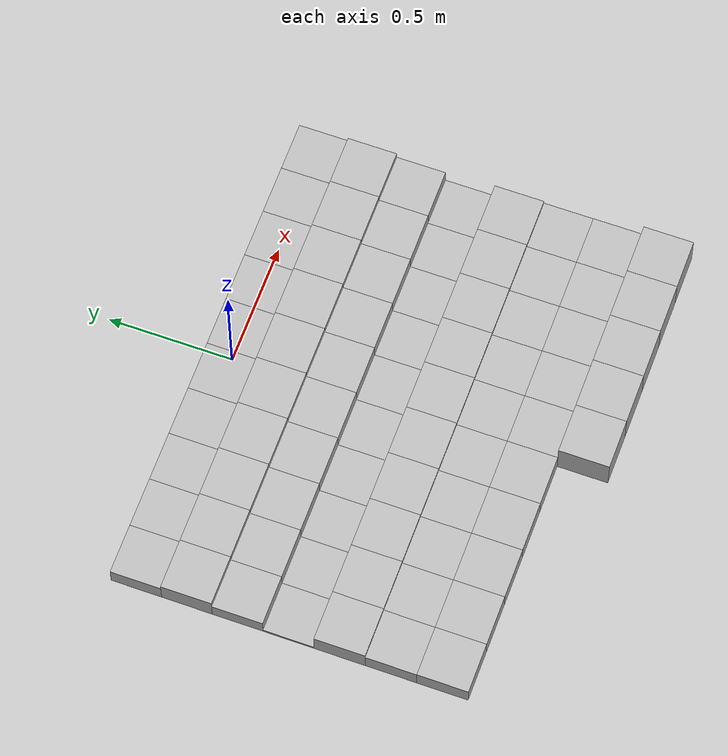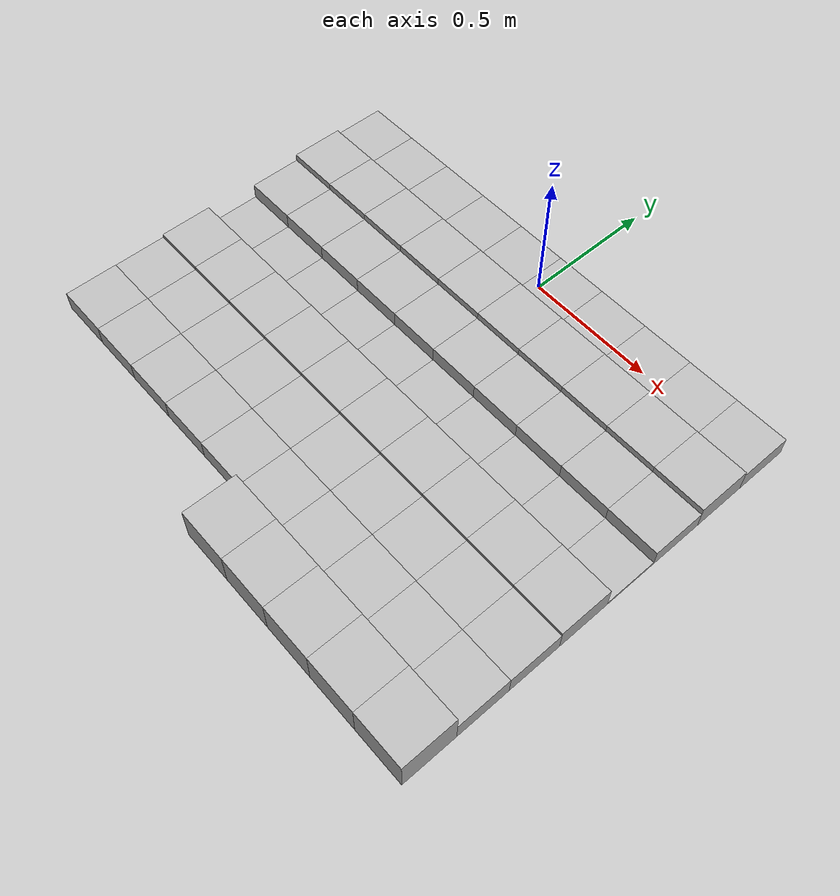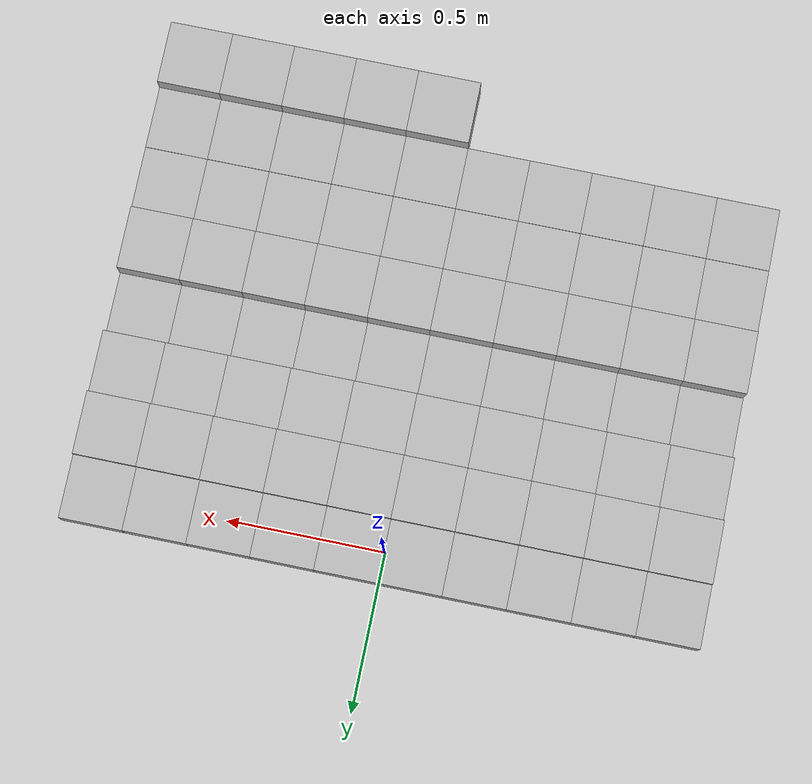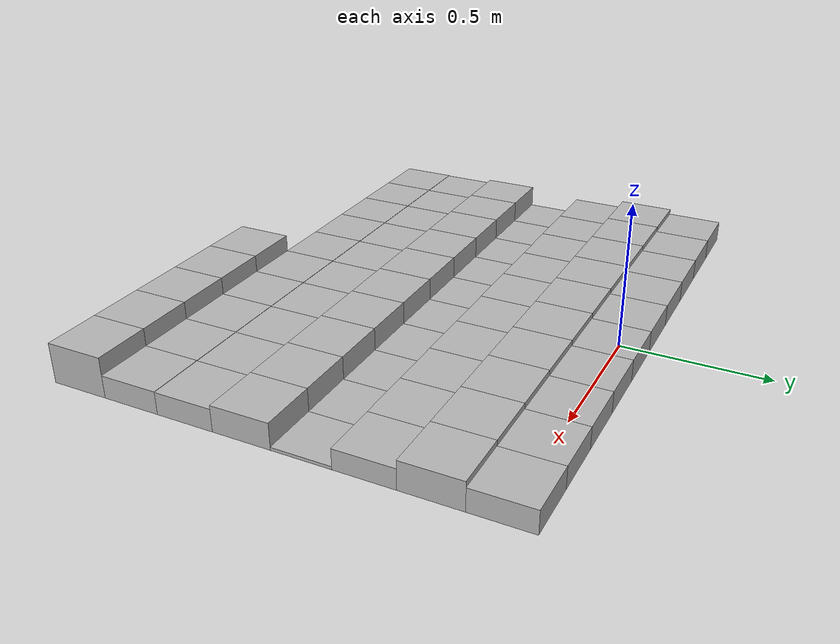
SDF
<sdf version="1.6">
 <model name="Terrain">
  <static>true</static>
  <link name="box_0_0">
   <pose>-0.9 0.0 0.0390463751198 0 0 0</pose>
   <inertial>
    <mass>1.0</mass>
    <inertia><ixx>0.0</ixx><ixy>0.0</ixy><ixz>0.0</ixz><iyy>0.0</iyy><iyz>0.0</iyz><izz>0.0</izz></inertia>
   </inertial>
   <collision name="collision"><geometry><box><size>0.2 0.2 0.0780927502396</size></box></geometry></collision>
   <visual name="visual"><geometry><box><size>0.2 0.2 0.0780927502396</size></box></geometry></visual>
  </link>
  <link name="box_0_1">
   <pose>-0.7 0.0 0.0390463751198 0 0 0</pose>
   <inertial>
    <mass>1.0</mass>
    <inertia><ixx>0.0</ixx><ixy>0.0</ixy><ixz>0.0</ixz><iyy>0.0</iyy><iyz>0.0</iyz><izz>0.0</izz></inertia>
   </inertial>
   <collision name="collision"><geometry><box><size>0.2 0.2 0.0780927502396</size></box></geometry></collision>
   <visual name="visual"><geometry><box><size>0.2 0.2 0.0780927502396</size></box></geometry></visual>
  </link>
  <link name="box_0_2">
   <pose>-0.5 0.0 0.0390463751198 0 0 0</pose>
   <inertial>
    <mass>1.0</mass>
    <inertia><ixx>0.0</ixx><ixy>0.0</ixy><ixz>0.0</ixz><iyy>0.0</iyy><iyz>0.0</iyz><izz>0.0</izz></inertia>
   </inertial>
   <collision name="collision"><geometry><box><size>0.2 0.2 0.0780927502396</size></box></geometry></collision>
   <visual name="visual"><geometry><box><size>0.2 0.2 0.0780927502396</size></box></geometry></visual>
  </link>
  <link name="box_0_3">
   <pose>-0.3 0.0 0.0390463751198 0 0 0</pose>
   <inertial>
    <mass>1.0</mass>
    <inertia><ixx>0.0</ixx><ixy>0.0</ixy><ixz>0.0</ixz><iyy>0.0</iyy><iyz>0.0</iyz><izz>0.0</izz></inertia>
   </inertial>
   <collision name="collision"><geometry><box><size>0.2 0.2 0.0780927502396</size></box></geometry></collision>
   <visual name="visual"><geometry><box><size>0.2 0.2 0.0780927502396</size></box></geometry></visual>
  </link>
  <link name="box_0_4">
   <pose>-0.1 0.0 0.0390463751198 0 0 0</pose>
   <inertial>
    <mass>1.0</mass>
    <inertia><ixx>0.0</ixx><ixy>0.0</ixy><ixz>0.0</ixz><iyy>0.0</iyy><iyz>0.0</iyz><izz>0.0</izz></inertia>
   </inertial>
   <collision name="collision"><geometry><box><size>0.2 0.2 0.0780927502396</size></box></geometry></collision>
   <visual name="visual"><geometry><box><size>0.2 0.2 0.0780927502396</size></box></geometry></visual>
  </link>
  <link name="box_0_5">
   <pose>0.1 0.0 0.0390463751198 0 0 0</pose>
   <inertial>
    <mass>1.0</mass>
    <inertia><ixx>0.0</ixx><ixy>0.0</ixy><ixz>0.0</ixz><iyy>0.0</iyy><iyz>0.0</iyz><izz>0.0</izz></inertia>
   </inertial>
   <collision name="collision"><geometry><box><size>0.2 0.2 0.0780927502396</size></box></geometry></collision>
   <visual name="visual"><geometry><box><size>0.2 0.2 0.0780927502396</size></box></geometry></visual>
  </link>
  <link name="box_0_6">
   <pose>0.3 0.0 0.0390463751198 0 0 0</pose>
   <inertial>
    <mass>1.0</mass>
    <inertia><ixx>0.0</ixx><ixy>0.0</ixy><ixz>0.0</ixz><iyy>0.0</iyy><iyz>0.0</iyz><izz>0.0</izz></inertia>
   </inertial>
   <collision name="collision"><geometry><box><size>0.2 0.2 0.0780927502396</size></box></geometry></collision>
   <visual name="visual"><geometry><box><size>0.2 0.2 0.0780927502396</size></box></geometry></visual>
  </link>
  <link name="box_0_7">
   <pose>0.5 0.0 0.0390463751198 0 0 0</pose>
   <inertial>
    <mass>1.0</mass>
    <inertia><ixx>0.0</ixx><ixy>0.0</ixy><ixz>0.0</ixz><iyy>0.0</iyy><iyz>0.0</iyz><izz>0.0</izz></inertia>
   </inertial>
   <collision name="collision"><geometry><box><size>0.2 0.2 0.0780927502396</size></box></geometry></collision>
   <visual name="visual"><geometry><box><size>0.2 0.2 0.0780927502396</size></box></geometry></visual>
  </link>
  <link name="box_0_8">
   <pose>0.7 0.0 0.0390463751198 0 0 0</pose>
   <inertial>
    <mass>1.0</mass>
    <inertia><ixx>0.0</ixx><ixy>0.0</ixy><ixz>0.0</ixz><iyy>0.0</iyy><iyz>0.0</iyz><izz>0.0</izz></inertia>
   </inertial>
   <collision name="collision"><geometry><box><size>0.2 0.2 0.0780927502396</size></box></geometry></collision>
   <visual name="visual"><geometry><box><size>0.2 0.2 0.0780927502396</size></box></geometry></visual>
  </link>
  <link name="box_0_9">
   <pose>0.9 0.0 0.0390463751198 0 0 0</pose>
   <inertial>
    <mass>1.0</mass>
    <inertia><ixx>0.0</ixx><ixy>0.0</ixy><ixz>0.0</ixz><iyy>0.0</iyy><iyz>0.0</iyz><izz>0.0</izz></inertia>
   </inertial>
   <collision name="collision"><geometry><box><size>0.2 0.2 0.0780927502396</size></box></geometry></collision>
   <visual name="visual"><geometry><box><size>0.2 0.2 0.0780927502396</size></box></geometry></visual>
  </link>
  <link name="box_1_0">
   <pose>-0.9 -0.2 0.048564601217 0 0 0</pose>
   <inertial>
    <mass>1.0</mass>
    <inertia><ixx>0.0</ixx><ixy>0.0</ixy><ixz>0.0</ixz><iyy>0.0</iyy><iyz>0.0</iyz><izz>0.0</izz></inertia>
   </inertial>
   <collision name="collision"><geometry><box><size>0.2 0.2 0.097129202434</size></box></geometry></collision>
   <visual name="visual"><geometry><box><size>0.2 0.2 0.097129202434</size></box></geometry></visual>
  </link>
  <link name="box_1_1">
   <pose>-0.7 -0.2 0.048564601217 0 0 0</pose>
   <inertial>
    <mass>1.0</mass>
    <inertia><ixx>0.0</ixx><ixy>0.0</ixy><ixz>0.0</ixz><iyy>0.0</iyy><iyz>0.0</iyz><izz>0.0</izz></inertia>
   </inertial>
   <collision name="collision"><geometry><box><size>0.2 0.2 0.097129202434</size></box></geometry></collision>
   <visual name="visual"><geometry><box><size>0.2 0.2 0.097129202434</size></box></geometry></visual>
  </link>
  <link name="box_1_2">
   <pose>-0.5 -0.2 0.048564601217 0 0 0</pose>
   <inertial>
    <mass>1.0</mass>
    <inertia><ixx>0.0</ixx><ixy>0.0</ixy><ixz>0.0</ixz><iyy>0.0</iyy><iyz>0.0</iyz><izz>0.0</izz></inertia>
   </inertial>
   <collision name="collision"><geometry><box><size>0.2 0.2 0.097129202434</size></box></geometry></collision>
   <visual name="visual"><geometry><box><size>0.2 0.2 0.097129202434</size></box></geometry></visual>
  </link>
  <link name="box_1_3">
   <pose>-0.3 -0.2 0.048564601217 0 0 0</pose>
   <inertial>
    <mass>1.0</mass>
    <inertia><ixx>0.0</ixx><ixy>0.0</ixy><ixz>0.0</ixz><iyy>0.0</iyy><iyz>0.0</iyz><izz>0.0</izz></inertia>
   </inertial>
   <collision name="collision"><geometry><box><size>0.2 0.2 0.097129202434</size></box></geometry></collision>
   <visual name="visual"><geometry><box><size>0.2 0.2 0.097129202434</size></box></geometry></visual>
  </link>
  <link name="box_1_4">
   <pose>-0.1 -0.2 0.048564601217 0 0 0</pose>
   <inertial>
    <mass>1.0</mass>
    <inertia><ixx>0.0</ixx><ixy>0.0</ixy><ixz>0.0</ixz><iyy>0.0</iyy><iyz>0.0</iyz><izz>0.0</izz></inertia>
   </inertial>
   <collision name="collision"><geometry><box><size>0.2 0.2 0.097129202434</size></box></geometry></collision>
   <visual name="visual"><geometry><box><size>0.2 0.2 0.097129202434</size></box></geometry></visual>
  </link>
  <link name="box_1_5">
   <pose>0.1 -0.2 0.048564601217 0 0 0</pose>
   <inertial>
    <mass>1.0</mass>
    <inertia><ixx>0.0</ixx><ixy>0.0</ixy><ixz>0.0</ixz><iyy>0.0</iyy><iyz>0.0</iyz><izz>0.0</izz></inertia>
   </inertial>
   <collision name="collision"><geometry><box><size>0.2 0.2 0.097129202434</size></box></geometry></collision>
   <visual name="visual"><geometry><box><size>0.2 0.2 0.097129202434</size></box></geometry></visual>
  </link>
  <link name="box_1_6">
   <pose>0.3 -0.2 0.048564601217 0 0 0</pose>
   <inertial>
    <mass>1.0</mass>
    <inertia><ixx>0.0</ixx><ixy>0.0</ixy><ixz>0.0</ixz><iyy>0.0</iyy><iyz>0.0</iyz><izz>0.0</izz></inertia>
   </inertial>
   <collision name="collision"><geometry><box><size>0.2 0.2 0.097129202434</size></box></geometry></collision>
   <visual name="visual"><geometry><box><size>0.2 0.2 0.097129202434</size></box></geometry></visual>
  </link>
  <link name="box_1_7">
   <pose>0.5 -0.2 0.048564601217 0 0 0</pose>
   <inertial>
    <mass>1.0</mass>
    <inertia><ixx>0.0</ixx><ixy>0.0</ixy><ixz>0.0</ixz><iyy>0.0</iyy><iyz>0.0</iyz><izz>0.0</izz></inertia>
   </inertial>
   <collision name="collision"><geometry><box><size>0.2 0.2 0.097129202434</size></box></geometry></collision>
   <visual name="visual"><geometry><box><size>0.2 0.2 0.097129202434</size></box></geometry></visual>
  </link>
  <link name="box_1_8">
   <pose>0.7 -0.2 0.048564601217 0 0 0</pose>
   <inertial>
    <mass>1.0</mass>
    <inertia><ixx>0.0</ixx><ixy>0.0</ixy><ixz>0.0</ixz><iyy>0.0</iyy><iyz>0.0</iyz><izz>0.0</izz></inertia>
   </inertial>
   <collision name="collision"><geometry><box><size>0.2 0.2 0.097129202434</size></box></geometry></collision>
   <visual name="visual"><geometry><box><size>0.2 0.2 0.097129202434</size></box></geometry></visual>
  </link>
  <link name="box_1_9">
   <pose>0.9 -0.2 0.048564601217 0 0 0</pose>
   <inertial>
    <mass>1.0</mass>
    <inertia><ixx>0.0</ixx><ixy>0.0</ixy><ixz>0.0</ixz><iyy>0.0</iyy><iyz>0.0</iyz><izz>0.0</izz></inertia>
   </inertial>
   <collision name="collision"><geometry><box><size>0.2 0.2 0.097129202434</size></box></geometry></collision>
   <visual name="visual"><geometry><box><size>0.2 0.2 0.097129202434</size></box></geometry></visual>
  </link>
  <link name="box_2_0">
   <pose>-0.9 -0.4 0.0350188570725 0 0 0</pose>
   <inertial>
    <mass>1.0</mass>
    <inertia><ixx>0.0</ixx><ixy>0.0</ixy><ixz>0.0</ixz><iyy>0.0</iyy><iyz>0.0</iyz><izz>0.0</izz></inertia>
   </inertial>
   <collision name="collision"><geometry><box><size>0.2 0.2 0.0700377141451</size></box></geometry></collision>
   <visual name="visual"><geometry><box><size>0.2 0.2 0.0700377141451</size></box></geometry></visual>
  </link>
  <link name="box_2_1">
   <pose>-0.7 -0.4 0.0350188570725 0 0 0</pose>
   <inertial>
    <mass>1.0</mass>
    <inertia><ixx>0.0</ixx><ixy>0.0</ixy><ixz>0.0</ixz><iyy>0.0</iyy><iyz>0.0</iyz><izz>0.0</izz></inertia>
   </inertial>
   <collision name="collision"><geometry><box><size>0.2 0.2 0.0700377141451</size></box></geometry></collision>
   <visual name="visual"><geometry><box><size>0.2 0.2 0.0700377141451</size></box></geometry></visual>
  </link>
  <link name="box_2_2">
   <pose>-0.5 -0.4 0.0350188570725 0 0 0</pose>
   <inertial>
    <mass>1.0</mass>
    <inertia><ixx>0.0</ixx><ixy>0.0</ixy><ixz>0.0</ixz><iyy>0.0</iyy><iyz>0.0</iyz><izz>0.0</izz></inertia>
   </inertial>
   <collision name="collision"><geometry><box><size>0.2 0.2 0.0700377141451</size></box></geometry></collision>
   <visual name="visual"><geometry><box><size>0.2 0.2 0.0700377141451</size></box></geometry></visual>
  </link>
  <link name="box_2_3">
   <pose>-0.3 -0.4 0.0350188570725 0 0 0</pose>
   <inertial>
    <mass>1.0</mass>
    <inertia><ixx>0.0</ixx><ixy>0.0</ixy><ixz>0.0</ixz><iyy>0.0</iyy><iyz>0.0</iyz><izz>0.0</izz></inertia>
   </inertial>
   <collision name="collision"><geometry><box><size>0.2 0.2 0.0700377141451</size></box></geometry></collision>
   <visual name="visual"><geometry><box><size>0.2 0.2 0.0700377141451</size></box></geometry></visual>
  </link>
  <link name="box_2_4">
   <pose>-0.1 -0.4 0.0350188570725 0 0 0</pose>
   <inertial>
    <mass>1.0</mass>
    <inertia><ixx>0.0</ixx><ixy>0.0</ixy><ixz>0.0</ixz><iyy>0.0</iyy><iyz>0.0</iyz><izz>0.0</izz></inertia>
   </inertial>
   <collision name="collision"><geometry><box><size>0.2 0.2 0.0700377141451</size></box></geometry></collision>
   <visual name="visual"><geometry><box><size>0.2 0.2 0.0700377141451</size></box></geometry></visual>
  </link>
  <link name="box_2_5">
   <pose>0.1 -0.4 0.0350188570725 0 0 0</pose>
   <inertial>
    <mass>1.0</mass>
    <inertia><ixx>0.0</ixx><ixy>0.0</ixy><ixz>0.0</ixz><iyy>0.0</iyy><iyz>0.0</iyz><izz>0.0</izz></inertia>
   </inertial>
   <collision name="collision"><geometry><box><size>0.2 0.2 0.0700377141451</size></box></geometry></collision>
   <visual name="visual"><geometry><box><size>0.2 0.2 0.0700377141451</size></box></geometry></visual>
  </link>
  <link name="box_2_6">
   <pose>0.3 -0.4 0.0350188570725 0 0 0</pose>
   <inertial>
    <mass>1.0</mass>
    <inertia><ixx>0.0</ixx><ixy>0.0</ixy><ixz>0.0</ixz><iyy>0.0</iyy><iyz>0.0</iyz><izz>0.0</izz></inertia>
   </inertial>
   <collision name="collision"><geometry><box><size>0.2 0.2 0.0700377141451</size></box></geometry></collision>
   <visual name="visual"><geometry><box><size>0.2 0.2 0.0700377141451</size></box></geometry></visual>
  </link>
  <link name="box_2_7">
   <pose>0.5 -0.4 0.0350188570725 0 0 0</pose>
   <inertial>
    <mass>1.0</mass>
    <inertia><ixx>0.0</ixx><ixy>0.0</ixy><ixz>0.0</ixz><iyy>0.0</iyy><iyz>0.0</iyz><izz>0.0</izz></inertia>
   </inertial>
   <collision name="collision"><geometry><box><size>0.2 0.2 0.0700377141451</size></box></geometry></collision>
   <visual name="visual"><geometry><box><size>0.2 0.2 0.0700377141451</size></box></geometry></visual>
  </link>
  <link name="box_2_8">
   <pose>0.7 -0.4 0.0350188570725 0 0 0</pose>
   <inertial>
    <mass>1.0</mass>
    <inertia><ixx>0.0</ixx><ixy>0.0</ixy><ixz>0.0</ixz><iyy>0.0</iyy><iyz>0.0</iyz><izz>0.0</izz></inertia>
   </inertial>
   <collision name="collision"><geometry><box><size>0.2 0.2 0.0700377141451</size></box></geometry></collision>
   <visual name="visual"><geometry><box><size>0.2 0.2 0.0700377141451</size></box></geometry></visual>
  </link>
  <link name="box_2_9">
   <pose>0.9 -0.4 0.0350188570725 0 0 0</pose>
   <inertial>
    <mass>1.0</mass>
    <inertia><ixx>0.0</ixx><ixy>0.0</ixy><ixz>0.0</ixz><iyy>0.0</iyy><iyz>0.0</iyz><izz>0.0</izz></inertia>
   </inertial>
   <collision name="collision"><geometry><box><size>0.2 0.2 0.0700377141451</size></box></geometry></collision>
   <visual name="visual"><geometry><box><size>0.2 0.2 0.0700377141451</size></box></geometry></visual>
  </link>
  <link name="box_3_0">
   <pose>-0.9 -0.6 0.00521348422485 0 0 0</pose>
   <inertial>
    <mass>1.0</mass>
    <inertia><ixx>0.0</ixx><ixy>0.0</ixy><ixz>0.0</ixz><iyy>0.0</iyy><iyz>0.0</iyz><izz>0.0</izz></inertia>
   </inertial>
   <collision name="collision"><geometry><box><size>0.2 0.2 0.0104269684497</size></box></geometry></collision>
   <visual name="visual"><geometry><box><size>0.2 0.2 0.0104269684497</size></box></geometry></visual>
  </link>
  <link name="box_3_1">
   <pose>-0.7 -0.6 0.00521348422485 0 0 0</pose>
   <inertial>
    <mass>1.0</mass>
    <inertia><ixx>0.0</ixx><ixy>0.0</ixy><ixz>0.0</ixz><iyy>0.0</iyy><iyz>0.0</iyz><izz>0.0</izz></inertia>
   </inertial>
   <collision name="collision"><geometry><box><size>0.2 0.2 0.0104269684497</size></box></geometry></collision>
   <visual name="visual"><geometry><box><size>0.2 0.2 0.0104269684497</size></box></geometry></visual>
  </link>
  <link name="box_3_2">
   <pose>-0.5 -0.6 0.00521348422485 0 0 0</pose>
   <inertial>
    <mass>1.0</mass>
    <inertia><ixx>0.0</ixx><ixy>0.0</ixy><ixz>0.0</ixz><iyy>0.0</iyy><iyz>0.0</iyz><izz>0.0</izz></inertia>
   </inertial>
   <collision name="collision"><geometry><box><size>0.2 0.2 0.0104269684497</size></box></geometry></collision>
   <visual name="visual"><geometry><box><size>0.2 0.2 0.0104269684497</size></box></geometry></visual>
  </link>
  <link name="box_3_3">
   <pose>-0.3 -0.6 0.00521348422485 0 0 0</pose>
   <inertial>
    <mass>1.0</mass>
    <inertia><ixx>0.0</ixx><ixy>0.0</ixy><ixz>0.0</ixz><iyy>0.0</iyy><iyz>0.0</iyz><izz>0.0</izz></inertia>
   </inertial>
   <collision name="collision"><geometry><box><size>0.2 0.2 0.0104269684497</size></box></geometry></collision>
   <visual name="visual"><geometry><box><size>0.2 0.2 0.0104269684497</size></box></geometry></visual>
  </link>
  <link name="box_3_4">
   <pose>-0.1 -0.6 0.00521348422485 0 0 0</pose>
   <inertial>
    <mass>1.0</mass>
    <inertia><ixx>0.0</ixx><ixy>0.0</ixy><ixz>0.0</ixz><iyy>0.0</iyy><iyz>0.0</iyz><izz>0.0</izz></inertia>
   </inertial>
   <collision name="collision"><geometry><box><size>0.2 0.2 0.0104269684497</size></box></geometry></collision>
   <visual name="visual"><geometry><box><size>0.2 0.2 0.0104269684497</size></box></geometry></visual>
  </link>
  <link name="box_3_5">
   <pose>0.1 -0.6 0.00521348422485 0 0 0</pose>
   <inertial>
    <mass>1.0</mass>
    <inertia><ixx>0.0</ixx><ixy>0.0</ixy><ixz>0.0</ixz><iyy>0.0</iyy><iyz>0.0</iyz><izz>0.0</izz></inertia>
   </inertial>
   <collision name="collision"><geometry><box><size>0.2 0.2 0.0104269684497</size></box></geometry></collision>
   <visual name="visual"><geometry><box><size>0.2 0.2 0.0104269684497</size></box></geometry></visual>
  </link>
  <link name="box_3_6">
   <pose>0.3 -0.6 0.00521348422485 0 0 0</pose>
   <inertial>
    <mass>1.0</mass>
    <inertia><ixx>0.0</ixx><ixy>0.0</ixy><ixz>0.0</ixz><iyy>0.0</iyy><iyz>0.0</iyz><izz>0.0</izz></inertia>
   </inertial>
   <collision name="collision"><geometry><box><size>0.2 0.2 0.0104269684497</size></box></geometry></collision>
   <visual name="visual"><geometry><box><size>0.2 0.2 0.0104269684497</size></box></geometry></visual>
  </link>
  <link name="box_3_7">
   <pose>0.5 -0.6 0.00521348422485 0 0 0</pose>
   <inertial>
    <mass>1.0</mass>
    <inertia><ixx>0.0</ixx><ixy>0.0</ixy><ixz>0.0</ixz><iyy>0.0</iyy><iyz>0.0</iyz><izz>0.0</izz></inertia>
   </inertial>
   <collision name="collision"><geometry><box><size>0.2 0.2 0.0104269684497</size></box></geometry></collision>
   <visual name="visual"><geometry><box><size>0.2 0.2 0.0104269684497</size></box></geometry></visual>
  </link>
  <link name="box_3_8">
   <pose>0.7 -0.6 0.00521348422485 0 0 0</pose>
   <inertial>
    <mass>1.0</mass>
    <inertia><ixx>0.0</ixx><ixy>0.0</ixy><ixz>0.0</ixz><iyy>0.0</iyy><iyz>0.0</iyz><izz>0.0</izz></inertia>
   </inertial>
   <collision name="collision"><geometry><box><size>0.2 0.2 0.0104269684497</size></box></geometry></collision>
   <visual name="visual"><geometry><box><size>0.2 0.2 0.0104269684497</size></box></geometry></visual>
  </link>
  <link name="box_3_9">
   <pose>0.9 -0.6 0.00521348422485 0 0 0</pose>
   <inertial>
    <mass>1.0</mass>
    <inertia><ixx>0.0</ixx><ixy>0.0</ixy><ixz>0.0</ixz><iyy>0.0</iyy><iyz>0.0</iyz><izz>0.0</izz></inertia>
   </inertial>
   <collision name="collision"><geometry><box><size>0.2 0.2 0.0104269684497</size></box></geometry></collision>
   <visual name="visual"><geometry><box><size>0.2 0.2 0.0104269684497</size></box></geometry></visual>
  </link>
  <link name="box_4_0">
   <pose>-0.9 -0.8 0.0452547870545 0 0 0</pose>
   <inertial>
    <mass>1.0</mass>
    <inertia><ixx>0.0</ixx><ixy>0.0</ixy><ixz>0.0</ixz><iyy>0.0</iyy><iyz>0.0</iyz><izz>0.0</izz></inertia>
   </inertial>
   <collision name="collision"><geometry><box><size>0.2 0.2 0.0905095741091</size></box></geometry></collision>
   <visual name="visual"><geometry><box><size>0.2 0.2 0.0905095741091</size></box></geometry></visual>
  </link>
  <link name="box_4_1">
   <pose>-0.7 -0.8 0.0452547870545 0 0 0</pose>
   <inertial>
    <mass>1.0</mass>
    <inertia><ixx>0.0</ixx><ixy>0.0</ixy><ixz>0.0</ixz><iyy>0.0</iyy><iyz>0.0</iyz><izz>0.0</izz></inertia>
   </inertial>
   <collision name="collision"><geometry><box><size>0.2 0.2 0.0905095741091</size></box></geometry></collision>
   <visual name="visual"><geometry><box><size>0.2 0.2 0.0905095741091</size></box></geometry></visual>
  </link>
  <link name="box_4_2">
   <pose>-0.5 -0.8 0.0452547870545 0 0 0</pose>
   <inertial>
    <mass>1.0</mass>
    <inertia><ixx>0.0</ixx><ixy>0.0</ixy><ixz>0.0</ixz><iyy>0.0</iyy><iyz>0.0</iyz><izz>0.0</izz></inertia>
   </inertial>
   <collision name="collision"><geometry><box><size>0.2 0.2 0.0905095741091</size></box></geometry></collision>
   <visual name="visual"><geometry><box><size>0.2 0.2 0.0905095741091</size></box></geometry></visual>
  </link>
  <link name="box_4_3">
   <pose>-0.3 -0.8 0.0452547870545 0 0 0</pose>
   <inertial>
    <mass>1.0</mass>
    <inertia><ixx>0.0</ixx><ixy>0.0</ixy><ixz>0.0</ixz><iyy>0.0</iyy><iyz>0.0</iyz><izz>0.0</izz></inertia>
   </inertial>
   <collision name="collision"><geometry><box><size>0.2 0.2 0.0905095741091</size></box></geometry></collision>
   <visual name="visual"><geometry><box><size>0.2 0.2 0.0905095741091</size></box></geometry></visual>
  </link>
  <link name="box_4_4">
   <pose>-0.1 -0.8 0.0452547870545 0 0 0</pose>
   <inertial>
    <mass>1.0</mass>
    <inertia><ixx>0.0</ixx><ixy>0.0</ixy><ixz>0.0</ixz><iyy>0.0</iyy><iyz>0.0</iyz><izz>0.0</izz></inertia>
   </inertial>
   <collision name="collision"><geometry><box><size>0.2 0.2 0.0905095741091</size></box></geometry></collision>
   <visual name="visual"><geometry><box><size>0.2 0.2 0.0905095741091</size></box></geometry></visual>
  </link>
  <link name="box_4_5">
   <pose>0.1 -0.8 0.0452547870545 0 0 0</pose>
   <inertial>
    <mass>1.0</mass>
    <inertia><ixx>0.0</ixx><ixy>0.0</ixy><ixz>0.0</ixz><iyy>0.0</iyy><iyz>0.0</iyz><izz>0.0</izz></inertia>
   </inertial>
   <collision name="collision"><geometry><box><size>0.2 0.2 0.0905095741091</size></box></geometry></collision>
   <visual name="visual"><geometry><box><size>0.2 0.2 0.0905095741091</size></box></geometry></visual>
  </link>
  <link name="box_4_6">
   <pose>0.3 -0.8 0.0452547870545 0 0 0</pose>
   <inertial>
    <mass>1.0</mass>
    <inertia><ixx>0.0</ixx><ixy>0.0</ixy><ixz>0.0</ixz><iyy>0.0</iyy><iyz>0.0</iyz><izz>0.0</izz></inertia>
   </inertial>
   <collision name="collision"><geometry><box><size>0.2 0.2 0.0905095741091</size></box></geometry></collision>
   <visual name="visual"><geometry><box><size>0.2 0.2 0.0905095741091</size></box></geometry></visual>
  </link>
  <link name="box_4_7">
   <pose>0.5 -0.8 0.0452547870545 0 0 0</pose>
   <inertial>
    <mass>1.0</mass>
    <inertia><ixx>0.0</ixx><ixy>0.0</ixy><ixz>0.0</ixz><iyy>0.0</iyy><iyz>0.0</iyz><izz>0.0</izz></inertia>
   </inertial>
   <collision name="collision"><geometry><box><size>0.2 0.2 0.0905095741091</size></box></geometry></collision>
   <visual name="visual"><geometry><box><size>0.2 0.2 0.0905095741091</size></box></geometry></visual>
  </link>
  <link name="box_4_8">
   <pose>0.7 -0.8 0.0452547870545 0 0 0</pose>
   <inertial>
    <mass>1.0</mass>
    <inertia><ixx>0.0</ixx><ixy>0.0</ixy><ixz>0.0</ixz><iyy>0.0</iyy><iyz>0.0</iyz><izz>0.0</izz></inertia>
   </inertial>
   <collision name="collision"><geometry><box><size>0.2 0.2 0.0905095741091</size></box></geometry></collision>
   <visual name="visual"><geometry><box><size>0.2 0.2 0.0905095741091</size></box></geometry></visual>
  </link>
  <link name="box_4_9">
   <pose>0.9 -0.8 0.0452547870545 0 0 0</pose>
   <inertial>
    <mass>1.0</mass>
    <inertia><ixx>0.0</ixx><ixy>0.0</ixy><ixz>0.0</ixz><iyy>0.0</iyy><iyz>0.0</iyz><izz>0.0</izz></inertia>
   </inertial>
   <collision name="collision"><geometry><box><size>0.2 0.2 0.0905095741091</size></box></geometry></collision>
   <visual name="visual"><geometry><box><size>0.2 0.2 0.0905095741091</size></box></geometry></visual>
  </link>
  <link name="box_5_0">
   <pose>-0.9 -1.0 0.0386607574503 0 0 0</pose>
   <inertial>
    <mass>1.0</mass>
    <inertia><ixx>0.0</ixx><ixy>0.0</ixy><ixz>0.0</ixz><iyy>0.0</iyy><iyz>0.0</iyz><izz>0.0</izz></inertia>
   </inertial>
   <collision name="collision"><geometry><box><size>0.2 0.2 0.0773215149006</size></box></geometry></collision>
   <visual name="visual"><geometry><box><size>0.2 0.2 0.0773215149006</size></box></geometry></visual>
  </link>
  <link name="box_5_1">
   <pose>-0.7 -1.0 0.0386607574503 0 0 0</pose>
   <inertial>
    <mass>1.0</mass>
    <inertia><ixx>0.0</ixx><ixy>0.0</ixy><ixz>0.0</ixz><iyy>0.0</iyy><iyz>0.0</iyz><izz>0.0</izz></inertia>
   </inertial>
   <collision name="collision"><geometry><box><size>0.2 0.2 0.0773215149006</size></box></geometry></collision>
   <visual name="visual"><geometry><box><size>0.2 0.2 0.0773215149006</size></box></geometry></visual>
  </link>
  <link name="box_5_2">
   <pose>-0.5 -1.0 0.0386607574503 0 0 0</pose>
   <inertial>
    <mass>1.0</mass>
    <inertia><ixx>0.0</ixx><ixy>0.0</ixy><ixz>0.0</ixz><iyy>0.0</iyy><iyz>0.0</iyz><izz>0.0</izz></inertia>
   </inertial>
   <collision name="collision"><geometry><box><size>0.2 0.2 0.0773215149006</size></box></geometry></collision>
   <visual name="visual"><geometry><box><size>0.2 0.2 0.0773215149006</size></box></geometry></visual>
  </link>
  <link name="box_5_3">
   <pose>-0.3 -1.0 0.0386607574503 0 0 0</pose>
   <inertial>
    <mass>1.0</mass>
    <inertia><ixx>0.0</ixx><ixy>0.0</ixy><ixz>0.0</ixz><iyy>0.0</iyy><iyz>0.0</iyz><izz>0.0</izz></inertia>
   </inertial>
   <collision name="collision"><geometry><box><size>0.2 0.2 0.0773215149006</size></box></geometry></collision>
   <visual name="visual"><geometry><box><size>0.2 0.2 0.0773215149006</size></box></geometry></visual>
  </link>
  <link name="box_5_4">
   <pose>-0.1 -1.0 0.0386607574503 0 0 0</pose>
   <inertial>
    <mass>1.0</mass>
    <inertia><ixx>0.0</ixx><ixy>0.0</ixy><ixz>0.0</ixz><iyy>0.0</iyy><iyz>0.0</iyz><izz>0.0</izz></inertia>
   </inertial>
   <collision name="collision"><geometry><box><size>0.2 0.2 0.0773215149006</size></box></geometry></collision>
   <visual name="visual"><geometry><box><size>0.2 0.2 0.0773215149006</size></box></geometry></visual>
  </link>
  <link name="box_5_5">
   <pose>0.1 -1.0 0.0386607574503 0 0 0</pose>
   <inertial>
    <mass>1.0</mass>
    <inertia><ixx>0.0</ixx><ixy>0.0</ixy><ixz>0.0</ixz><iyy>0.0</iyy><iyz>0.0</iyz><izz>0.0</izz></inertia>
   </inertial>
   <collision name="collision"><geometry><box><size>0.2 0.2 0.0773215149006</size></box></geometry></collision>
   <visual name="visual"><geometry><box><size>0.2 0.2 0.0773215149006</size></box></geometry></visual>
  </link>
  <link name="box_5_6">
   <pose>0.3 -1.0 0.0386607574503 0 0 0</pose>
   <inertial>
    <mass>1.0</mass>
    <inertia><ixx>0.0</ixx><ixy>0.0</ixy><ixz>0.0</ixz><iyy>0.0</iyy><iyz>0.0</iyz><izz>0.0</izz></inertia>
   </inertial>
   <collision name="collision"><geometry><box><size>0.2 0.2 0.0773215149006</size></box></geometry></collision>
   <visual name="visual"><geometry><box><size>0.2 0.2 0.0773215149006</size></box></geometry></visual>
  </link>
  <link name="box_5_7">
   <pose>0.5 -1.0 0.0386607574503 0 0 0</pose>
   <inertial>
    <mass>1.0</mass>
    <inertia><ixx>0.0</ixx><ixy>0.0</ixy><ixz>0.0</ixz><iyy>0.0</iyy><iyz>0.0</iyz><izz>0.0</izz></inertia>
   </inertial>
   <collision name="collision"><geometry><box><size>0.2 0.2 0.0773215149006</size></box></geometry></collision>
   <visual name="visual"><geometry><box><size>0.2 0.2 0.0773215149006</size></box></geometry></visual>
  </link>
  <link name="box_5_8">
   <pose>0.7 -1.0 0.0386607574503 0 0 0</pose>
   <inertial>
    <mass>1.0</mass>
    <inertia><ixx>0.0</ixx><ixy>0.0</ixy><ixz>0.0</ixz><iyy>0.0</iyy><iyz>0.0</iyz><izz>0.0</izz></inertia>
   </inertial>
   <collision name="collision"><geometry><box><size>0.2 0.2 0.0773215149006</size></box></geometry></collision>
   <visual name="visual"><geometry><box><size>0.2 0.2 0.0773215149006</size></box></geometry></visual>
  </link>
  <link name="box_5_9">
   <pose>0.9 -1.0 0.0386607574503 0 0 0</pose>
   <inertial>
    <mass>1.0</mass>
    <inertia><ixx>0.0</ixx><ixy>0.0</ixy><ixz>0.0</ixz><iyy>0.0</iyy><iyz>0.0</iyz><izz>0.0</izz></inertia>
   </inertial>
   <collision name="collision"><geometry><box><size>0.2 0.2 0.0773215149006</size></box></geometry></collision>
   <visual name="visual"><geometry><box><size>0.2 0.2 0.0773215149006</size></box></geometry></visual>
  </link>
  <link name="box_6_0">
   <pose>-0.9 -1.2 0.0393657503688 0 0 0</pose>
   <inertial>
    <mass>1.0</mass>
    <inertia><ixx>0.0</ixx><ixy>0.0</ixy><ixz>0.0</ixz><iyy>0.0</iyy><iyz>0.0</iyz><izz>0.0</izz></inertia>
   </inertial>
   <collision name="collision"><geometry><box><size>0.2 0.2 0.0787315007375</size></box></geometry></collision>
   <visual name="visual"><geometry><box><size>0.2 0.2 0.0787315007375</size></box></geometry></visual>
  </link>
  <link name="box_6_1">
   <pose>-0.7 -1.2 0.0393657503688 0 0 0</pose>
   <inertial>
    <mass>1.0</mass>
    <inertia><ixx>0.0</ixx><ixy>0.0</ixy><ixz>0.0</ixz><iyy>0.0</iyy><iyz>0.0</iyz><izz>0.0</izz></inertia>
   </inertial>
   <collision name="collision"><geometry><box><size>0.2 0.2 0.0787315007375</size></box></geometry></collision>
   <visual name="visual"><geometry><box><size>0.2 0.2 0.0787315007375</size></box></geometry></visual>
  </link>
  <link name="box_6_2">
   <pose>-0.5 -1.2 0.0393657503688 0 0 0</pose>
   <inertial>
    <mass>1.0</mass>
    <inertia><ixx>0.0</ixx><ixy>0.0</ixy><ixz>0.0</ixz><iyy>0.0</iyy><iyz>0.0</iyz><izz>0.0</izz></inertia>
   </inertial>
   <collision name="collision"><geometry><box><size>0.2 0.2 0.0787315007375</size></box></geometry></collision>
   <visual name="visual"><geometry><box><size>0.2 0.2 0.0787315007375</size></box></geometry></visual>
  </link>
  <link name="box_6_3">
   <pose>-0.3 -1.2 0.0393657503688 0 0 0</pose>
   <inertial>
    <mass>1.0</mass>
    <inertia><ixx>0.0</ixx><ixy>0.0</ixy><ixz>0.0</ixz><iyy>0.0</iyy><iyz>0.0</iyz><izz>0.0</izz></inertia>
   </inertial>
   <collision name="collision"><geometry><box><size>0.2 0.2 0.0787315007375</size></box></geometry></collision>
   <visual name="visual"><geometry><box><size>0.2 0.2 0.0787315007375</size></box></geometry></visual>
  </link>
  <link name="box_6_4">
   <pose>-0.1 -1.2 0.0393657503688 0 0 0</pose>
   <inertial>
    <mass>1.0</mass>
    <inertia><ixx>0.0</ixx><ixy>0.0</ixy><ixz>0.0</ixz><iyy>0.0</iyy><iyz>0.0</iyz><izz>0.0</izz></inertia>
   </inertial>
   <collision name="collision"><geometry><box><size>0.2 0.2 0.0787315007375</size></box></geometry></collision>
   <visual name="visual"><geometry><box><size>0.2 0.2 0.0787315007375</size></box></geometry></visual>
  </link>
  <link name="box_6_5">
   <pose>0.1 -1.2 0.0393657503688 0 0 0</pose>
   <inertial>
    <mass>1.0</mass>
    <inertia><ixx>0.0</ixx><ixy>0.0</ixy><ixz>0.0</ixz><iyy>0.0</iyy><iyz>0.0</iyz><izz>0.0</izz></inertia>
   </inertial>
   <collision name="collision"><geometry><box><size>0.2 0.2 0.0787315007375</size></box></geometry></collision>
   <visual name="visual"><geometry><box><size>0.2 0.2 0.0787315007375</size></box></geometry></visual>
  </link>
  <link name="box_6_6">
   <pose>0.3 -1.2 0.0393657503688 0 0 0</pose>
   <inertial>
    <mass>1.0</mass>
    <inertia><ixx>0.0</ixx><ixy>0.0</ixy><ixz>0.0</ixz><iyy>0.0</iyy><iyz>0.0</iyz><izz>0.0</izz></inertia>
   </inertial>
   <collision name="collision"><geometry><box><size>0.2 0.2 0.0787315007375</size></box></geometry></collision>
   <visual name="visual"><geometry><box><size>0.2 0.2 0.0787315007375</size></box></geometry></visual>
  </link>
  <link name="box_6_7">
   <pose>0.5 -1.2 0.0393657503688 0 0 0</pose>
   <inertial>
    <mass>1.0</mass>
    <inertia><ixx>0.0</ixx><ixy>0.0</ixy><ixz>0.0</ixz><iyy>0.0</iyy><iyz>0.0</iyz><izz>0.0</izz></inertia>
   </inertial>
   <collision name="collision"><geometry><box><size>0.2 0.2 0.0787315007375</size></box></geometry></collision>
   <visual name="visual"><geometry><box><size>0.2 0.2 0.0787315007375</size></box></geometry></visual>
  </link>
  <link name="box_6_8">
   <pose>0.7 -1.2 0.0393657503688 0 0 0</pose>
   <inertial>
    <mass>1.0</mass>
    <inertia><ixx>0.0</ixx><ixy>0.0</ixy><ixz>0.0</ixz><iyy>0.0</iyy><iyz>0.0</iyz><izz>0.0</izz></inertia>
   </inertial>
   <collision name="collision"><geometry><box><size>0.2 0.2 0.0787315007375</size></box></geometry></collision>
   <visual name="visual"><geometry><box><size>0.2 0.2 0.0787315007375</size></box></geometry></visual>
  </link>
  <link name="box_6_9">
   <pose>0.9 -1.2 0.0393657503688 0 0 0</pose>
   <inertial>
    <mass>1.0</mass>
    <inertia><ixx>0.0</ixx><ixy>0.0</ixy><ixz>0.0</ixz><iyy>0.0</iyy><iyz>0.0</iyz><izz>0.0</izz></inertia>
   </inertial>
   <collision name="collision"><geometry><box><size>0.2 0.2 0.0787315007375</size></box></geometry></collision>
   <visual name="visual"><geometry><box><size>0.2 0.2 0.0787315007375</size></box></geometry></visual>
  </link>
  <link name="box_7_5">
   <pose>0.1 -1.4 0.0701533673907 0 0 0</pose>
   <inertial>
    <mass>1.0</mass>
    <inertia><ixx>0.0</ixx><ixy>0.0</ixy><ixz>0.0</ixz><iyy>0.0</iyy><iyz>0.0</iyz><izz>0.0</izz></inertia>
   </inertial>
   <collision name="collision"><geometry><box><size>0.2 0.2 0.140306734781</size></box></geometry></collision>
   <visual name="visual"><geometry><box><size>0.2 0.2 0.140306734781</size></box></geometry></visual>
  </link>
  <link name="box_7_6">
   <pose>0.3 -1.4 0.0701533673907 0 0 0</pose>
   <inertial>
    <mass>1.0</mass>
    <inertia><ixx>0.0</ixx><ixy>0.0</ixy><ixz>0.0</ixz><iyy>0.0</iyy><iyz>0.0</iyz><izz>0.0</izz></inertia>
   </inertial>
   <collision name="collision"><geometry><box><size>0.2 0.2 0.140306734781</size></box></geometry></collision>
   <visual name="visual"><geometry><box><size>0.2 0.2 0.140306734781</size></box></geometry></visual>
  </link>
  <link name="box_7_7">
   <pose>0.5 -1.4 0.0701533673907 0 0 0</pose>
   <inertial>
    <mass>1.0</mass>
    <inertia><ixx>0.0</ixx><ixy>0.0</ixy><ixz>0.0</ixz><iyy>0.0</iyy><iyz>0.0</iyz><izz>0.0</izz></inertia>
   </inertial>
   <collision name="collision"><geometry><box><size>0.2 0.2 0.140306734781</size></box></geometry></collision>
   <visual name="visual"><geometry><box><size>0.2 0.2 0.140306734781</size></box></geometry></visual>
  </link>
  <link name="box_7_8">
   <pose>0.7 -1.4 0.0701533673907 0 0 0</pose>
   <inertial>
    <mass>1.0</mass>
    <inertia><ixx>0.0</ixx><ixy>0.0</ixy><ixz>0.0</ixz><iyy>0.0</iyy><iyz>0.0</iyz><izz>0.0</izz></inertia>
   </inertial>
   <collision name="collision"><geometry><box><size>0.2 0.2 0.140306734781</size></box></geometry></collision>
   <visual name="visual"><geometry><box><size>0.2 0.2 0.140306734781</size></box></geometry></visual>
  </link>
  <link name="box_7_9">
   <pose>0.9 -1.4 0.0701533673907 0 0 0</pose>
   <inertial>
    <mass>1.0</mass>
    <inertia><ixx>0.0</ixx><ixy>0.0</ixy><ixz>0.0</ixz><iyy>0.0</iyy><iyz>0.0</iyz><izz>0.0</izz></inertia>
   </inertial>
   <collision name="collision"><geometry><box><size>0.2 0.2 0.140306734781</size></box></geometry></collision>
   <visual name="visual"><geometry><box><size>0.2 0.2 0.140306734781</size></box></geometry></visual>
  </link>
 </model>
</sdf>
